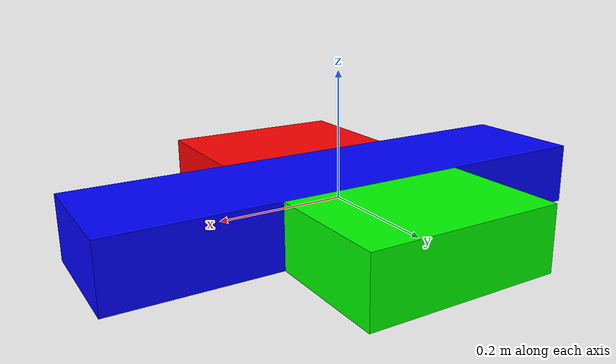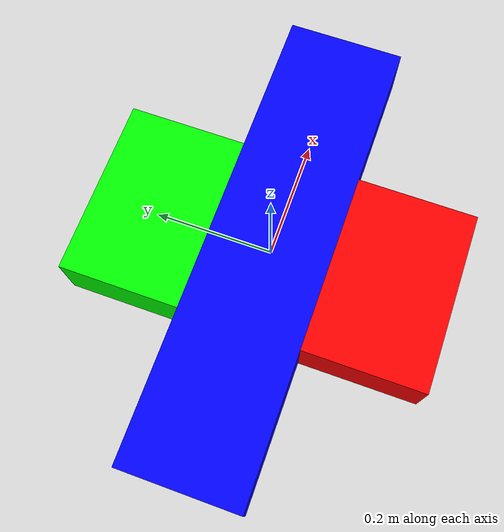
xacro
<?xml version="1.0"?>
<robot xmlns:xacro="http://www.ros.org/wiki/xacro" name = "meldog_trunk">

    <!-- Meldog trunk (3 simple boxes) -->
    <xacro:property name="trunk_base_length" value="0.8" />
    <xacro:property name="trunk_base_width" value="0.2" />
    <xacro:property name="trunk_base_height" value="0.1" />

    <xacro:property name="trunk_actuators_length" value="0.3" />
    <xacro:property name="trunk_actuators_width" value="0.2" />
    <xacro:property name="trunk_actuators_height" value="0.1" />

    <xacro:property name="trunk_mass" value="8.0"/>

    <link name="trunk_link">
        <inertial>
            <origin xyz="0.0 0.0 0.0" rpy="0.0 0.0 0.0"/>
            <mass value="${trunk_mass}"/>
            <inertia ixx="${1/12*trunk_mass*(trunk_base_width*trunk_base_width + trunk_base_height*trunk_base_height)}" ixy="0.0" ixz="0.0" iyy="${1/12*trunk_mass*(trunk_base_length*trunk_base_length + trunk_base_height*trunk_base_height)}" iyz=".0" izz="${1/12*trunk_mass*(trunk_base_length*trunk_base_length + trunk_base_width*trunk_base_width)}"/>
        </inertial>

        <visual name="trunk_base_visual">
            <origin xyz="0.0 0.0 0.0" rpy="0.0 0.0 0.0"/>
            <geometry>
                <box size="${trunk_base_length} ${trunk_base_width} ${trunk_base_height}"/>
            </geometry>
            <material name="">
                <color rgba="0.0 0.0 1.0 1.0"/>
            </material>
        </visual>
        <visual name="trunk_actuators_left_visual">
            <origin xyz="0.0 ${trunk_base_width/2 + trunk_actuators_width/2} 0.0" rpy="0.0 0.0 0.0"/>
            <geometry>
                <box size="${trunk_actuators_length} ${trunk_actuators_width} ${trunk_actuators_height}"/>
            </geometry>
            <material name="">
                <color rgba="0.0 1.0 0.0 1.0"/>
            </material>
        </visual>
        <visual name="trunk_actuators_right_visual">
            <origin xyz="0.0 ${-trunk_base_width/2 - trunk_actuators_width/2} 0.0" rpy="0.0 0.0 0.0"/>
            <geometry>
                <box size="${trunk_actuators_length} ${trunk_actuators_width} ${trunk_actuators_height}"/>
            </geometry>
            <material name="">
                <color rgba="1.0 0.0 0.0 1.0"/>
            </material>
        </visual>

         <collision name="trunk_base_collision">
            <origin xyz="0.0 0.0 0.0" rpy="0.0 0.0 0.0"/>
            <geometry>
                <box size="${trunk_base_length} ${trunk_base_width} ${trunk_base_height}"/>
            </geometry>
        </collision>
        <collision name="trunk_actuators_left_collision">
            <origin xyz="0.0 ${trunk_base_width/2 + trunk_actuators_width/2} 0.0" rpy="0.0 0.0 0.0"/>
            <geometry>
                <box size="${trunk_actuators_length} ${trunk_actuators_width} ${trunk_actuators_height}"/>
            </geometry>
        </collision>
        <collision name="trunk_actuators_right_collision">
            <origin xyz="0.0 ${-trunk_base_width/2 - trunk_actuators_width/2} 0.0" rpy="0.0 0.0 0.0"/>
            <geometry>
                <box size="${trunk_actuators_length} ${trunk_actuators_width} ${trunk_actuators_height}"/>
            </geometry>
        </collision>
    </link>
</robot>
